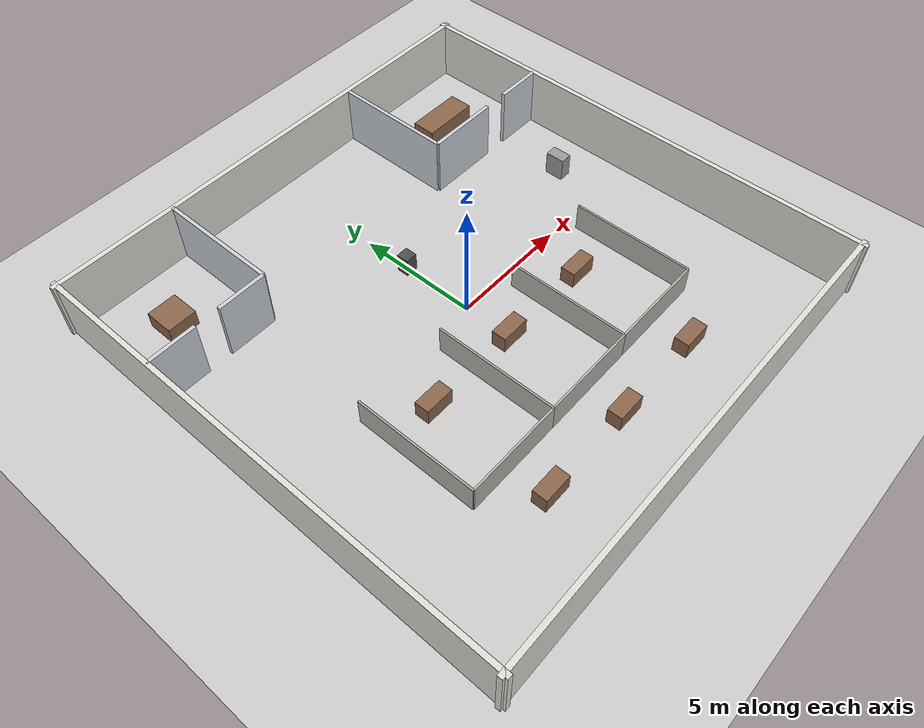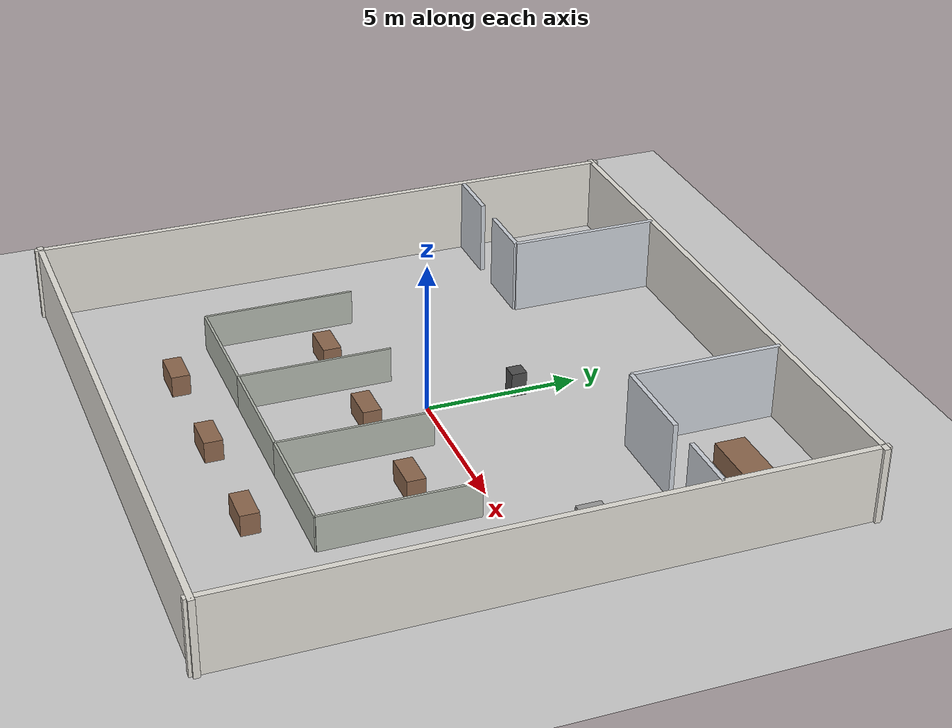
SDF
<?xml version="1.0"?>
<!--
  Office environment for Gazebo.
  Matches training scene: 20m x 20m, open plan with cubicles.
  Scene bounds: (-10, -10) to (10, 10) — same as scene_cfg.py OFFICE_SCENE.
-->
<sdf version="1.6">
  <world name="office">

    <include><uri>model://ground_plane</uri></include>
    <include><uri>model://sun</uri></include>

    <physics type="ode">
      <real_time_factor>1</real_time_factor>
      <max_step_size>0.001</max_step_size>
    </physics>

    <!-- ============ Outer Walls (20m x 20m) ============ -->
    <model name="wall_north">
      <static>true</static>
      <pose>0 10 1.25 0 0 0</pose>
      <link name="link">
        <collision name="c"><geometry><box><size>20.4 0.2 2.5</size></box></geometry></collision>
        <visual name="v"><geometry><box><size>20.4 0.2 2.5</size></box></geometry>
          <material><ambient>0.88 0.87 0.84 1</ambient></material></visual>
      </link>
    </model>

    <model name="wall_south">
      <static>true</static>
      <pose>0 -10 1.25 0 0 0</pose>
      <link name="link">
        <collision name="c"><geometry><box><size>20.4 0.2 2.5</size></box></geometry></collision>
        <visual name="v"><geometry><box><size>20.4 0.2 2.5</size></box></geometry>
          <material><ambient>0.88 0.87 0.84 1</ambient></material></visual>
      </link>
    </model>

    <model name="wall_east">
      <static>true</static>
      <pose>10 0 1.25 0 0 0</pose>
      <link name="link">
        <collision name="c"><geometry><box><size>0.2 20.4 2.5</size></box></geometry></collision>
        <visual name="v"><geometry><box><size>0.2 20.4 2.5</size></box></geometry>
          <material><ambient>0.88 0.87 0.84 1</ambient></material></visual>
      </link>
    </model>

    <model name="wall_west">
      <static>true</static>
      <pose>-10 0 1.25 0 0 0</pose>
      <link name="link">
        <collision name="c"><geometry><box><size>0.2 20.4 2.5</size></box></geometry></collision>
        <visual name="v"><geometry><box><size>0.2 20.4 2.5</size></box></geometry>
          <material><ambient>0.88 0.87 0.84 1</ambient></material></visual>
      </link>
    </model>

    <!-- ============ Conference Room (NE corner, 6m x 5m) ============ -->
    <model name="conf_wall_w">
      <static>true</static>
      <pose>4 7.5 1.25 0 0 0</pose>
      <link name="link">
        <collision name="c"><geometry><box><size>0.15 5 2.5</size></box></geometry></collision>
        <visual name="v"><geometry><box><size>0.15 5 2.5</size></box></geometry>
          <material><ambient>0.80 0.82 0.85 1</ambient></material></visual>
      </link>
    </model>

    <!-- South wall with door gap (gap at x=6..8) -->
    <model name="conf_wall_s_left">
      <static>true</static>
      <pose>5.5 5 1.25 0 0 0</pose>
      <link name="link">
        <collision name="c"><geometry><box><size>3 0.15 2.5</size></box></geometry></collision>
        <visual name="v"><geometry><box><size>3 0.15 2.5</size></box></geometry>
          <material><ambient>0.80 0.82 0.85 1</ambient></material></visual>
      </link>
    </model>

    <model name="conf_wall_s_right">
      <static>true</static>
      <pose>9 5 1.25 0 0 0</pose>
      <link name="link">
        <collision name="c"><geometry><box><size>2 0.15 2.5</size></box></geometry></collision>
        <visual name="v"><geometry><box><size>2 0.15 2.5</size></box></geometry>
          <material><ambient>0.80 0.82 0.85 1</ambient></material></visual>
      </link>
    </model>

    <!-- Conference table -->
    <model name="conf_table">
      <static>true</static>
      <pose>7 7.5 0.35 0 0 0</pose>
      <link name="link">
        <collision name="c"><geometry><box><size>2.4 1.0 0.7</size></box></geometry></collision>
        <visual name="v"><geometry><box><size>2.4 1.0 0.7</size></box></geometry>
          <material><ambient>0.55 0.40 0.30 1</ambient></material></visual>
      </link>
    </model>

    <!-- ============ Break Room (NW corner, 5m x 5m) ============ -->
    <model name="break_wall_e">
      <static>true</static>
      <pose>-5 7.5 1.25 0 0 0</pose>
      <link name="link">
        <collision name="c"><geometry><box><size>0.15 5 2.5</size></box></geometry></collision>
        <visual name="v"><geometry><box><size>0.15 5 2.5</size></box></geometry>
          <material><ambient>0.80 0.82 0.85 1</ambient></material></visual>
      </link>
    </model>

    <model name="break_wall_s_left">
      <static>true</static>
      <pose>-9 5 1.25 0 0 0</pose>
      <link name="link">
        <collision name="c"><geometry><box><size>2 0.15 2.5</size></box></geometry></collision>
        <visual name="v"><geometry><box><size>2 0.15 2.5</size></box></geometry>
          <material><ambient>0.80 0.82 0.85 1</ambient></material></visual>
      </link>
    </model>

    <model name="break_wall_s_right">
      <static>true</static>
      <pose>-6 5 1.25 0 0 0</pose>
      <link name="link">
        <collision name="c"><geometry><box><size>2 0.15 2.5</size></box></geometry></collision>
        <visual name="v"><geometry><box><size>2 0.15 2.5</size></box></geometry>
          <material><ambient>0.80 0.82 0.85 1</ambient></material></visual>
      </link>
    </model>

    <!-- Break room table -->
    <model name="break_table">
      <static>true</static>
      <pose>-7.5 7.5 0.35 0 0 0</pose>
      <link name="link">
        <collision name="c"><geometry><box><size>1.2 1.2 0.7</size></box></geometry></collision>
        <visual name="v"><geometry><box><size>1.2 1.2 0.7</size></box></geometry>
          <material><ambient>0.55 0.40 0.30 1</ambient></material></visual>
      </link>
    </model>

    <!-- ============ Cubicle Area (south half, y from -9 to 2) ============ -->

    <!-- Vertical cubicle partitions (1.2m high) -->
    <model name="cub_v1">
      <static>true</static>
      <pose>-6 -3 0.6 0 0 0</pose>
      <link name="link">
        <collision name="c"><geometry><box><size>0.08 5 1.2</size></box></geometry></collision>
        <visual name="v"><geometry><box><size>0.08 5 1.2</size></box></geometry>
          <material><ambient>0.70 0.72 0.68 1</ambient></material></visual>
      </link>
    </model>

    <model name="cub_v2">
      <static>true</static>
      <pose>-2 -3 0.6 0 0 0</pose>
      <link name="link">
        <collision name="c"><geometry><box><size>0.08 5 1.2</size></box></geometry></collision>
        <visual name="v"><geometry><box><size>0.08 5 1.2</size></box></geometry>
          <material><ambient>0.70 0.72 0.68 1</ambient></material></visual>
      </link>
    </model>

    <model name="cub_v3">
      <static>true</static>
      <pose>2 -3 0.6 0 0 0</pose>
      <link name="link">
        <collision name="c"><geometry><box><size>0.08 5 1.2</size></box></geometry></collision>
        <visual name="v"><geometry><box><size>0.08 5 1.2</size></box></geometry>
          <material><ambient>0.70 0.72 0.68 1</ambient></material></visual>
      </link>
    </model>

    <model name="cub_v4">
      <static>true</static>
      <pose>6 -3 0.6 0 0 0</pose>
      <link name="link">
        <collision name="c"><geometry><box><size>0.08 5 1.2</size></box></geometry></collision>
        <visual name="v"><geometry><box><size>0.08 5 1.2</size></box></geometry>
          <material><ambient>0.70 0.72 0.68 1</ambient></material></visual>
      </link>
    </model>

    <!-- Horizontal cubicle partitions -->
    <model name="cub_h_left">
      <static>true</static>
      <pose>-4 -5.5 0.6 0 0 0</pose>
      <link name="link">
        <collision name="c"><geometry><box><size>4 0.08 1.2</size></box></geometry></collision>
        <visual name="v"><geometry><box><size>4 0.08 1.2</size></box></geometry>
          <material><ambient>0.70 0.72 0.68 1</ambient></material></visual>
      </link>
    </model>

    <model name="cub_h_mid">
      <static>true</static>
      <pose>0 -5.5 0.6 0 0 0</pose>
      <link name="link">
        <collision name="c"><geometry><box><size>4 0.08 1.2</size></box></geometry></collision>
        <visual name="v"><geometry><box><size>4 0.08 1.2</size></box></geometry>
          <material><ambient>0.70 0.72 0.68 1</ambient></material></visual>
      </link>
    </model>

    <model name="cub_h_right">
      <static>true</static>
      <pose>4 -5.5 0.6 0 0 0</pose>
      <link name="link">
        <collision name="c"><geometry><box><size>4 0.08 1.2</size></box></geometry></collision>
        <visual name="v"><geometry><box><size>4 0.08 1.2</size></box></geometry>
          <material><ambient>0.70 0.72 0.68 1</ambient></material></visual>
      </link>
    </model>

    <!-- ============ Desks ============ -->
    <model name="desk_1">
      <static>true</static>
      <pose>-4 -2 0.35 0 0 0</pose>
      <link name="link">
        <collision name="c"><geometry><box><size>1.2 0.6 0.7</size></box></geometry></collision>
        <visual name="v"><geometry><box><size>1.2 0.6 0.7</size></box></geometry>
          <material><ambient>0.55 0.40 0.30 1</ambient></material></visual>
      </link>
    </model>

    <model name="desk_2">
      <static>true</static>
      <pose>0 -2 0.35 0 0 0</pose>
      <link name="link">
        <collision name="c"><geometry><box><size>1.2 0.6 0.7</size></box></geometry></collision>
        <visual name="v"><geometry><box><size>1.2 0.6 0.7</size></box></geometry>
          <material><ambient>0.55 0.40 0.30 1</ambient></material></visual>
      </link>
    </model>

    <model name="desk_3">
      <static>true</static>
      <pose>4 -2 0.35 0 0 0</pose>
      <link name="link">
        <collision name="c"><geometry><box><size>1.2 0.6 0.7</size></box></geometry></collision>
        <visual name="v"><geometry><box><size>1.2 0.6 0.7</size></box></geometry>
          <material><ambient>0.55 0.40 0.30 1</ambient></material></visual>
      </link>
    </model>

    <model name="desk_4">
      <static>true</static>
      <pose>-4 -7 0.35 0 0 0</pose>
      <link name="link">
        <collision name="c"><geometry><box><size>1.2 0.6 0.7</size></box></geometry></collision>
        <visual name="v"><geometry><box><size>1.2 0.6 0.7</size></box></geometry>
          <material><ambient>0.55 0.40 0.30 1</ambient></material></visual>
      </link>
    </model>

    <model name="desk_5">
      <static>true</static>
      <pose>0 -7 0.35 0 0 0</pose>
      <link name="link">
        <collision name="c"><geometry><box><size>1.2 0.6 0.7</size></box></geometry></collision>
        <visual name="v"><geometry><box><size>1.2 0.6 0.7</size></box></geometry>
          <material><ambient>0.55 0.40 0.30 1</ambient></material></visual>
      </link>
    </model>

    <model name="desk_6">
      <static>true</static>
      <pose>4 -7 0.35 0 0 0</pose>
      <link name="link">
        <collision name="c"><geometry><box><size>1.2 0.6 0.7</size></box></geometry></collision>
        <visual name="v"><geometry><box><size>1.2 0.6 0.7</size></box></geometry>
          <material><ambient>0.55 0.40 0.30 1</ambient></material></visual>
      </link>
    </model>

    <!-- ============ Misc Furniture ============ -->

    <!-- Printer in common area -->
    <model name="printer">
      <static>true</static>
      <pose>0 3 0.4 0 0 0</pose>
      <link name="link">
        <collision name="c"><geometry><box><size>0.5 0.5 0.8</size></box></geometry></collision>
        <visual name="v"><geometry><box><size>0.5 0.5 0.8</size></box></geometry>
          <material><ambient>0.3 0.3 0.3 1</ambient></material></visual>
      </link>
    </model>

    <!-- Filing cabinet -->
    <model name="cabinet">
      <static>true</static>
      <pose>8 2 0.5 0 0 0</pose>
      <link name="link">
        <collision name="c"><geometry><box><size>0.5 0.8 1.0</size></box></geometry></collision>
        <visual name="v"><geometry><box><size>0.5 0.8 1.0</size></box></geometry>
          <material><ambient>0.6 0.6 0.6 1</ambient></material></visual>
      </link>
    </model>

  </world>
</sdf>
